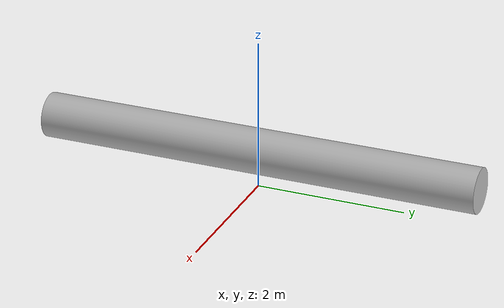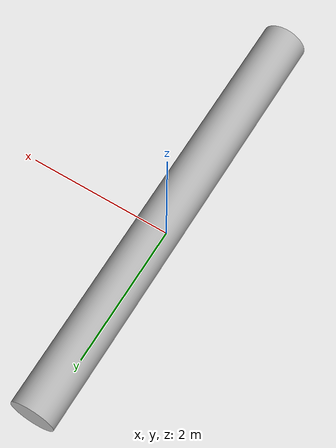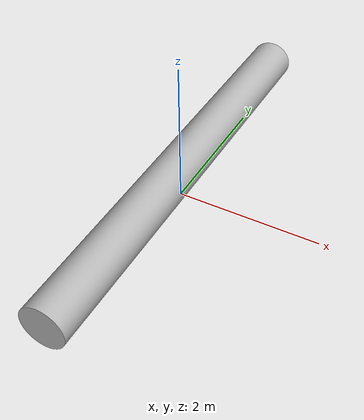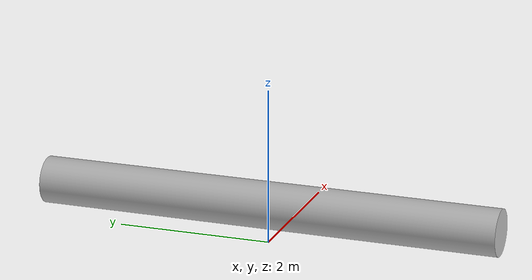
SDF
<?xml version="1.0" ?>
<sdf version="1.6">
    <model name="OFICIAL_TRAVE_PRETA2">
        <pose>0 0 0.5 0 0 0</pose>
        <static>true</static>
        <link name="link">
            <collision name="collision">
                <geometry>
                    <mesh>
                        <uri>model://OFICIAL_TRAVE_PRETA2/meshes/trave_preta.obj</uri>
                        <scale>3 3 3</scale>
                    </mesh>
                </geometry>
            </collision>
            <visual name="visual">
                <geometry>
                    <mesh>
                        <uri>model://OFICIAL_TRAVE_PRETA2/meshes/trave_preta.obj</uri>
                        <scale>3 3 3</scale>
                    </mesh>
                </geometry>
            </visual>
        </link>
    </model>
</sdf>
